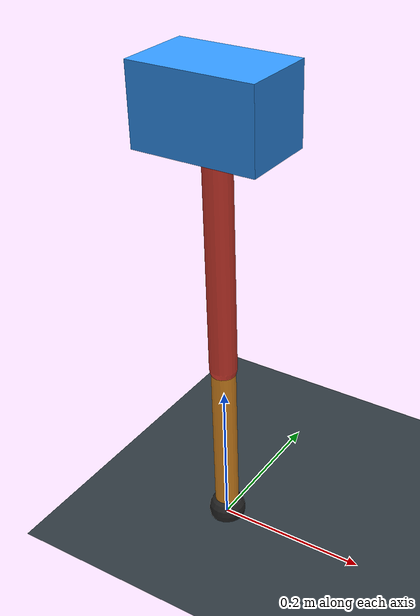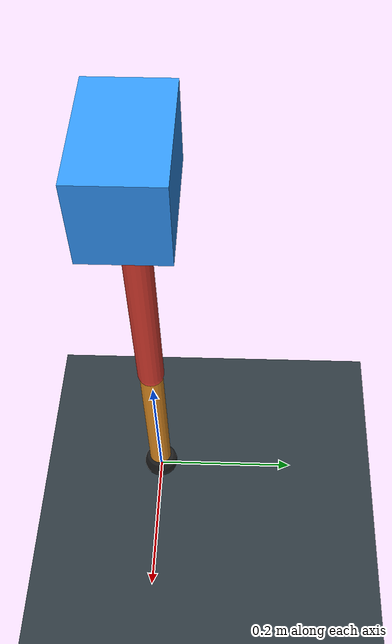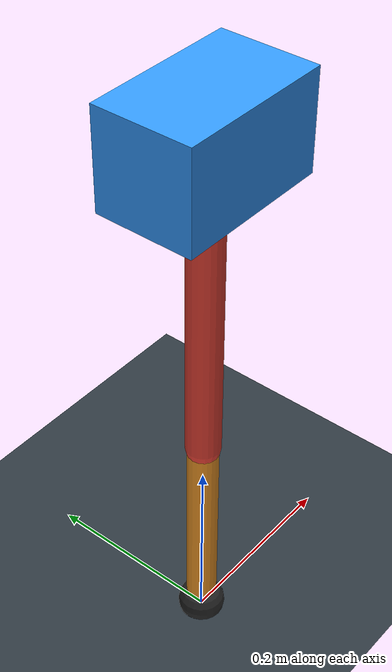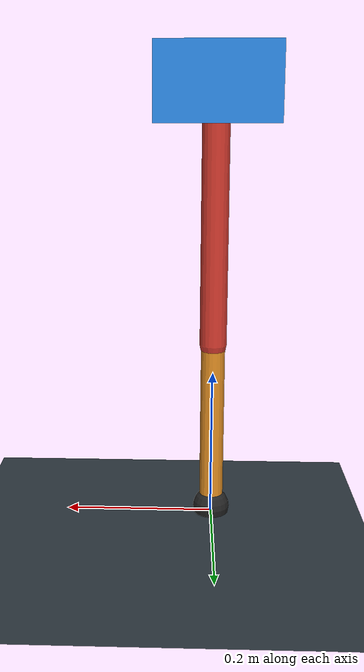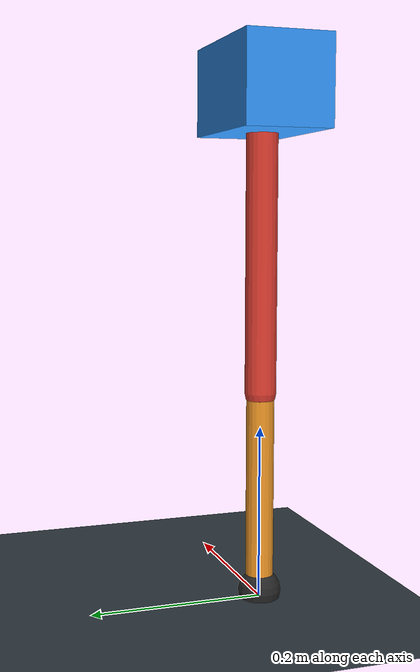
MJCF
<mujoco model="single_axis_two_bar">
  <compiler angle="radian" inertiafromgeom="true"/>
  <option timestep="0.001" integrator="implicitfast" gravity="0 0 -9.81"/>
  <default>
    <joint damping="0.08"/>
    <geom friction="1.2 0.01 0.0001" condim="3"/>
  </default>
  <worldbody>
    <geom name="floor" type="plane" size="5 5 0.1" rgba="0.18 0.22 0.25 1"/>
    <body name="carriage" pos="0 0 0.5839915607955577">
      <joint name="pole_slide" type="slide" axis="0 0 1"/>
      <geom name="payload" type="box" size="0.08 0.05 0.05" mass="2.4138481597728623" rgba="0.2 0.6 1 1"/>
      <body name="thigh" pos="0 0 0">
        <joint name="hip" type="hinge" axis="0 1 0"/>
        <geom name="thigh_link" type="capsule" fromto="0 0 0 0 0 -0.34378370402418673" size="0.018" mass="0.24495043181808665" rgba="0.9 0.25 0.2 1"/>
        <body name="shank" pos="0 0 -0.34378370402418673">
          <joint name="knee" type="hinge" axis="0 1 0"/>
          <geom name="shank_link" type="capsule" fromto="0 0 0 0 0 -0.2324962555588624" size="0.016" mass="0.1656566542526544" rgba="0.95 0.6 0.15 1"/>
          <geom name="foot" type="sphere" pos="0 0 -0.2324962555588624" size="0.025" mass="0.03" rgba="0.15 0.15 0.15 1"/>
          <site name="toe" pos="0 0 -0.2324962555588624" size="0.008"/>
        </body>
      </body>
    </body>
  </worldbody>
  <actuator>
    <motor name="hip_motor" joint="hip" ctrlrange="-32.94227571727303 32.94227571727303"/>
    <motor name="knee_motor" joint="knee" ctrlrange="-104.62507263353159 104.62507263353159"/>
  </actuator>
</mujoco>
